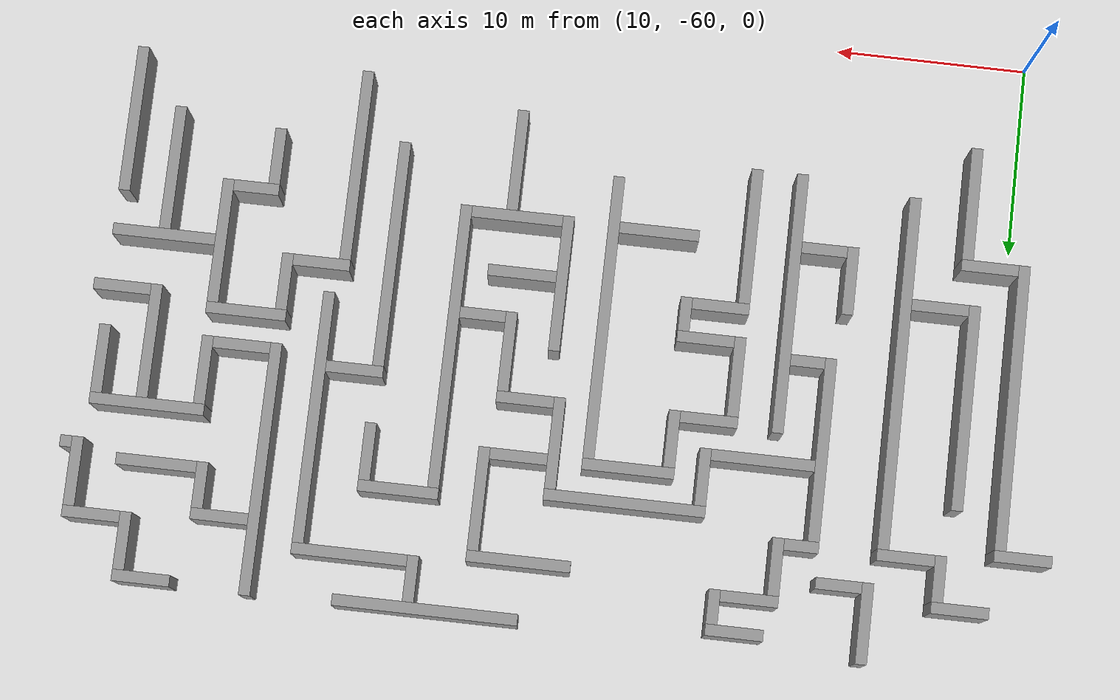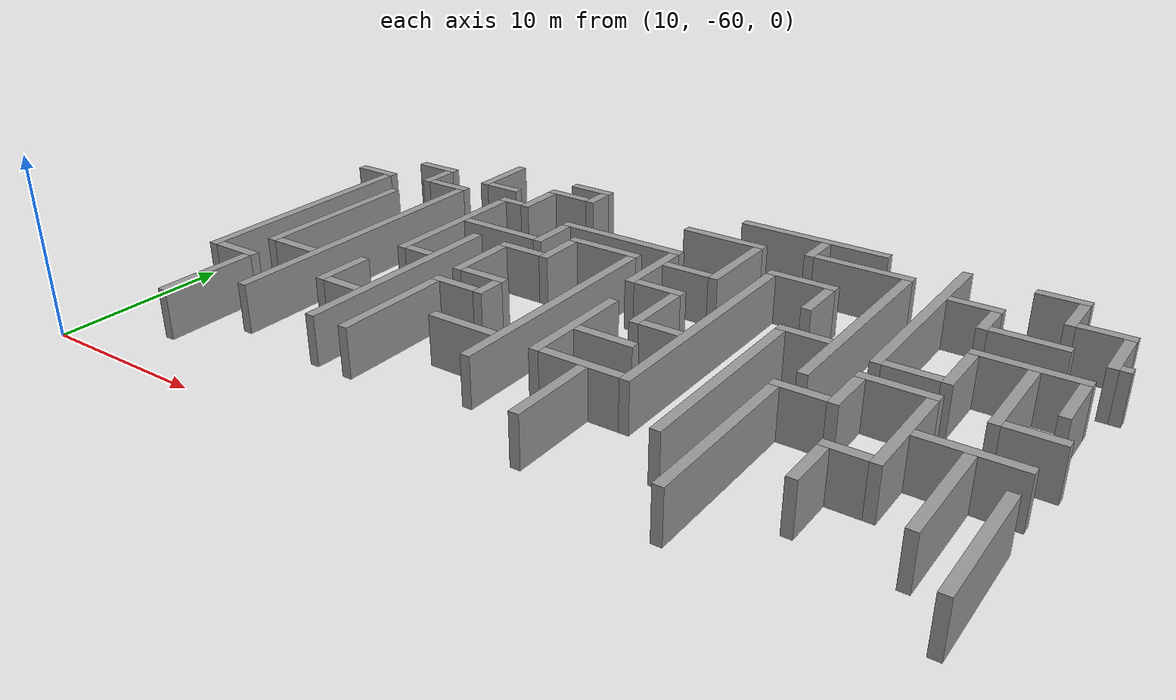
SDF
<sdf version="1.4">
 <model name="ButterflyWorld">
  <static>1</static>
  <link name="Wall_80">
   <collision name="Wall_80_Collision">
    <geometry><box><size>0.60000 4.20000 3.00000</size></box></geometry>
    <pose>15.90000 -29.70000 0 0 0 0.00000</pose>
   </collision>
   <visual name="Wall_80_Visual">
    <geometry><box><size>0.60000 4.20000 3.00000</size></box></geometry>
    <material>
     <script><uri>file://media/materials/scripts/gazebo.material</uri><name>Gazebo/Grey</name></script>
    </material>
    <pose>15.90000 -29.70000 0 0 0 0.00000</pose>
   </visual>
  </link>
  <link name="Wall_81">
   <collision name="Wall_81_Collision">
    <geometry><box><size>9.60000 0.60000 3.00000</size></box></geometry>
    <pose>38.40000 -27.90000 0 0 0 0.00000</pose>
   </collision>
   <visual name="Wall_81_Visual">
    <geometry><box><size>9.60000 0.60000 3.00000</size></box></geometry>
    <material>
     <script><uri>file://media/materials/scripts/gazebo.material</uri><name>Gazebo/Grey</name></script>
    </material>
    <pose>38.40000 -27.90000 0 0 0 0.00000</pose>
   </visual>
  </link>
  <link name="Wall_82">
   <collision name="Wall_82_Collision">
    <geometry><box><size>0.60000 13.20000 3.00000</size></box></geometry>
    <pose>47.70000 -34.20000 0 0 0 0.00000</pose>
   </collision>
   <visual name="Wall_82_Visual">
    <geometry><box><size>0.60000 13.20000 3.00000</size></box></geometry>
    <material>
     <script><uri>file://media/materials/scripts/gazebo.material</uri><name>Gazebo/Grey</name></script>
    </material>
    <pose>47.70000 -34.20000 0 0 0 0.00000</pose>
   </visual>
  </link>
  <link name="Wall_83">
   <collision name="Wall_83_Collision">
    <geometry><box><size>3.00000 0.60000 3.00000</size></box></geometry>
    <pose>53.10000 -27.90000 0 0 0 0.00000</pose>
   </collision>
   <visual name="Wall_83_Visual">
    <geometry><box><size>3.00000 0.60000 3.00000</size></box></geometry>
    <material>
     <script><uri>file://media/materials/scripts/gazebo.material</uri><name>Gazebo/Grey</name></script>
    </material>
    <pose>53.10000 -27.90000 0 0 0 0.00000</pose>
   </visual>
  </link>
  <link name="Wall_84">
   <collision name="Wall_84_Collision">
    <geometry><box><size>3.00000 0.60000 3.00000</size></box></geometry>
    <pose>22.50000 -28.50000 0 0 0 0.00000</pose>
   </collision>
   <visual name="Wall_84_Visual">
    <geometry><box><size>3.00000 0.60000 3.00000</size></box></geometry>
    <material>
     <script><uri>file://media/materials/scripts/gazebo.material</uri><name>Gazebo/Grey</name></script>
    </material>
    <pose>22.50000 -28.50000 0 0 0 0.00000</pose>
   </visual>
  </link>
  <link name="Wall_85">
   <collision name="Wall_85_Collision">
    <geometry><box><size>0.60000 2.40000 3.00000</size></box></geometry>
    <pose>39.30000 -29.40000 0 0 0 0.00000</pose>
   </collision>
   <visual name="Wall_85_Visual">
    <geometry><box><size>0.60000 2.40000 3.00000</size></box></geometry>
    <material>
     <script><uri>file://media/materials/scripts/gazebo.material</uri><name>Gazebo/Grey</name></script>
    </material>
    <pose>39.30000 -29.40000 0 0 0 0.00000</pose>
   </visual>
  </link>
  <link name="Wall_86">
   <collision name="Wall_86_Collision">
    <geometry><box><size>0.60000 3.00000 3.00000</size></box></geometry>
    <pose>54.30000 -29.70000 0 0 0 0.00000</pose>
   </collision>
   <visual name="Wall_86_Visual">
    <geometry><box><size>0.60000 3.00000 3.00000</size></box></geometry>
    <material>
     <script><uri>file://media/materials/scripts/gazebo.material</uri><name>Gazebo/Grey</name></script>
    </material>
    <pose>54.30000 -29.70000 0 0 0 0.00000</pose>
   </visual>
  </link>
  <link name="Wall_87">
   <collision name="Wall_87_Collision">
    <geometry><box><size>0.60000 1.80000 3.00000</size></box></geometry>
    <pose>23.70000 -29.70000 0 0 0 0.00000</pose>
   </collision>
   <visual name="Wall_87_Visual">
    <geometry><box><size>0.60000 1.80000 3.00000</size></box></geometry>
    <material>
     <script><uri>file://media/materials/scripts/gazebo.material</uri><name>Gazebo/Grey</name></script>
    </material>
    <pose>23.70000 -29.70000 0 0 0 0.00000</pose>
   </visual>
  </link>
  <link name="Wall_88">
   <collision name="Wall_88_Collision">
    <geometry><box><size>3.00000 0.60000 3.00000</size></box></geometry>
    <pose>21.90000 -30.30000 0 0 0 0.00000</pose>
   </collision>
   <visual name="Wall_88_Visual">
    <geometry><box><size>3.00000 0.60000 3.00000</size></box></geometry>
    <material>
     <script><uri>file://media/materials/scripts/gazebo.material</uri><name>Gazebo/Grey</name></script>
    </material>
    <pose>21.90000 -30.30000 0 0 0 0.00000</pose>
   </visual>
  </link>
  <link name="Wall_89">
   <collision name="Wall_89_Collision">
    <geometry><box><size>6.00000 0.60000 3.00000</size></box></geometry>
    <pose>42.60000 -30.30000 0 0 0 0.00000</pose>
   </collision>
   <visual name="Wall_89_Visual">
    <geometry><box><size>6.00000 0.60000 3.00000</size></box></geometry>
    <material>
     <script><uri>file://media/materials/scripts/gazebo.material</uri><name>Gazebo/Grey</name></script>
    </material>
    <pose>42.60000 -30.30000 0 0 0 0.00000</pose>
   </visual>
  </link>
  <link name="Wall_90">
   <collision name="Wall_90_Collision">
    <geometry><box><size>3.00000 0.60000 3.00000</size></box></geometry>
    <pose>11.10000 -30.90000 0 0 0 0.00000</pose>
   </collision>
   <visual name="Wall_90_Visual">
    <geometry><box><size>3.00000 0.60000 3.00000</size></box></geometry>
    <material>
     <script><uri>file://media/materials/scripts/gazebo.material</uri><name>Gazebo/Grey</name></script>
    </material>
    <pose>11.10000 -30.90000 0 0 0 0.00000</pose>
   </visual>
  </link>
  <link name="Wall_91">
   <collision name="Wall_91_Collision">
    <geometry><box><size>0.60000 3.00000 3.00000</size></box></geometry>
    <pose>20.70000 -32.10000 0 0 0 0.00000</pose>
   </collision>
   <visual name="Wall_91_Visual">
    <geometry><box><size>0.60000 3.00000 3.00000</size></box></geometry>
    <material>
     <script><uri>file://media/materials/scripts/gazebo.material</uri><name>Gazebo/Grey</name></script>
    </material>
    <pose>20.70000 -32.10000 0 0 0 0.00000</pose>
   </visual>
  </link>
  <link name="Wall_92">
   <collision name="Wall_92_Collision">
    <geometry><box><size>5.40000 0.60000 3.00000</size></box></geometry>
    <pose>33.90000 -30.90000 0 0 0 0.00000</pose>
   </collision>
   <visual name="Wall_92_Visual">
    <geometry><box><size>5.40000 0.60000 3.00000</size></box></geometry>
    <material>
     <script><uri>file://media/materials/scripts/gazebo.material</uri><name>Gazebo/Grey</name></script>
    </material>
    <pose>33.90000 -30.90000 0 0 0 0.00000</pose>
   </visual>
  </link>
  <link name="Wall_93">
   <collision name="Wall_93_Collision">
    <geometry><box><size>0.60000 13.20000 3.00000</size></box></geometry>
    <pose>45.30000 -37.20000 0 0 0 0.00000</pose>
   </collision>
   <visual name="Wall_93_Visual">
    <geometry><box><size>0.60000 13.20000 3.00000</size></box></geometry>
    <material>
     <script><uri>file://media/materials/scripts/gazebo.material</uri><name>Gazebo/Grey</name></script>
    </material>
    <pose>45.30000 -37.20000 0 0 0 0.00000</pose>
   </visual>
  </link>
  <link name="Wall_94">
   <collision name="Wall_94_Collision">
    <geometry><box><size>3.00000 0.60000 3.00000</size></box></geometry>
    <pose>56.10000 -30.90000 0 0 0 0.00000</pose>
   </collision>
   <visual name="Wall_94_Visual">
    <geometry><box><size>3.00000 0.60000 3.00000</size></box></geometry>
    <material>
     <script><uri>file://media/materials/scripts/gazebo.material</uri><name>Gazebo/Grey</name></script>
    </material>
    <pose>56.10000 -30.90000 0 0 0 0.00000</pose>
   </visual>
  </link>
  <link name="Wall_95">
   <collision name="Wall_95_Collision">
    <geometry><box><size>0.60000 2.40000 3.00000</size></box></geometry>
    <pose>12.30000 -32.40000 0 0 0 0.00000</pose>
   </collision>
   <visual name="Wall_95_Visual">
    <geometry><box><size>0.60000 2.40000 3.00000</size></box></geometry>
    <material>
     <script><uri>file://media/materials/scripts/gazebo.material</uri><name>Gazebo/Grey</name></script>
    </material>
    <pose>12.30000 -32.40000 0 0 0 0.00000</pose>
   </visual>
  </link>
  <link name="Wall_96">
   <collision name="Wall_96_Collision">
    <geometry><box><size>2.40000 0.60000 3.00000</size></box></geometry>
    <pose>17.40000 -31.50000 0 0 0 0.00000</pose>
   </collision>
   <visual name="Wall_96_Visual">
    <geometry><box><size>2.40000 0.60000 3.00000</size></box></geometry>
    <material>
     <script><uri>file://media/materials/scripts/gazebo.material</uri><name>Gazebo/Grey</name></script>
    </material>
    <pose>17.40000 -31.50000 0 0 0 0.00000</pose>
   </visual>
  </link>
  <link name="Wall_97">
   <collision name="Wall_97_Collision">
    <geometry><box><size>0.60000 5.40000 3.00000</size></box></geometry>
    <pose>36.30000 -33.90000 0 0 0 0.00000</pose>
   </collision>
   <visual name="Wall_97_Visual">
    <geometry><box><size>0.60000 5.40000 3.00000</size></box></geometry>
    <material>
     <script><uri>file://media/materials/scripts/gazebo.material</uri><name>Gazebo/Grey</name></script>
    </material>
    <pose>36.30000 -33.90000 0 0 0 0.00000</pose>
   </visual>
  </link>
  <link name="Wall_98">
   <collision name="Wall_98_Collision">
    <geometry><box><size>3.00000 0.60000 3.00000</size></box></geometry>
    <pose>49.50000 -31.50000 0 0 0 0.00000</pose>
   </collision>
   <visual name="Wall_98_Visual">
    <geometry><box><size>3.00000 0.60000 3.00000</size></box></geometry>
    <material>
     <script><uri>file://media/materials/scripts/gazebo.material</uri><name>Gazebo/Grey</name></script>
    </material>
    <pose>49.50000 -31.50000 0 0 0 0.00000</pose>
   </visual>
  </link>
  <link name="Wall_99">
   <collision name="Wall_99_Collision">
    <geometry><box><size>0.60000 3.60000 3.00000</size></box></geometry>
    <pose>57.30000 -33.00000 0 0 0 0.00000</pose>
   </collision>
   <visual name="Wall_99_Visual">
    <geometry><box><size>0.60000 3.60000 3.00000</size></box></geometry>
    <material>
     <script><uri>file://media/materials/scripts/gazebo.material</uri><name>Gazebo/Grey</name></script>
    </material>
    <pose>57.30000 -33.00000 0 0 0 0.00000</pose>
   </visual>
  </link>
  <link name="Wall_100">
   <collision name="Wall_100_Collision">
    <geometry><box><size>0.60000 2.40000 3.00000</size></box></geometry>
    <pose>50.70000 -33.00000 0 0 0 0.00000</pose>
   </collision>
   <visual name="Wall_100_Visual">
    <geometry><box><size>0.60000 2.40000 3.00000</size></box></geometry>
    <material>
     <script><uri>file://media/materials/scripts/gazebo.material</uri><name>Gazebo/Grey</name></script>
    </material>
    <pose>50.70000 -33.00000 0 0 0 0.00000</pose>
   </visual>
  </link>
  <link name="Wall_101">
   <collision name="Wall_101_Collision">
    <geometry><box><size>3.00000 0.60000 3.00000</size></box></geometry>
    <pose>14.10000 -33.30000 0 0 0 0.00000</pose>
   </collision>
   <visual name="Wall_101_Visual">
    <geometry><box><size>3.00000 0.60000 3.00000</size></box></geometry>
    <material>
     <script><uri>file://media/materials/scripts/gazebo.material</uri><name>Gazebo/Grey</name></script>
    </material>
    <pose>14.10000 -33.30000 0 0 0 0.00000</pose>
   </visual>
  </link>
  <link name="Wall_102">
   <collision name="Wall_102_Collision">
    <geometry><box><size>1.80000 0.60000 3.00000</size></box></geometry>
    <pose>19.50000 -33.30000 0 0 0 0.00000</pose>
   </collision>
   <visual name="Wall_102_Visual">
    <geometry><box><size>1.80000 0.60000 3.00000</size></box></geometry>
    <material>
     <script><uri>file://media/materials/scripts/gazebo.material</uri><name>Gazebo/Grey</name></script>
    </material>
    <pose>19.50000 -33.30000 0 0 0 0.00000</pose>
   </visual>
  </link>
  <link name="Wall_103">
   <collision name="Wall_103_Collision">
    <geometry><box><size>3.00000 0.60000 3.00000</size></box></geometry>
    <pose>8.10000 -33.90000 0 0 0 0.00000</pose>
   </collision>
   <visual name="Wall_103_Visual">
    <geometry><box><size>3.00000 0.60000 3.00000</size></box></geometry>
    <material>
     <script><uri>file://media/materials/scripts/gazebo.material</uri><name>Gazebo/Grey</name></script>
    </material>
    <pose>8.10000 -33.90000 0 0 0 0.00000</pose>
   </visual>
  </link>
  <link name="Wall_104">
   <collision name="Wall_104_Collision">
    <geometry><box><size>0.60000 18.60000 3.00000</size></box></geometry>
    <pose>15.30000 -42.90000 0 0 0 0.00000</pose>
   </collision>
   <visual name="Wall_104_Visual">
    <geometry><box><size>0.60000 18.60000 3.00000</size></box></geometry>
    <material>
     <script><uri>file://media/materials/scripts/gazebo.material</uri><name>Gazebo/Grey</name></script>
    </material>
    <pose>15.30000 -42.90000 0 0 0 0.00000</pose>
   </visual>
  </link>
  <link name="Wall_105">
   <collision name="Wall_105_Collision">
    <geometry><box><size>0.60000 9.60000 3.00000</size></box></geometry>
    <pose>18.90000 -38.40000 0 0 0 0.00000</pose>
   </collision>
   <visual name="Wall_105_Visual">
    <geometry><box><size>0.60000 9.60000 3.00000</size></box></geometry>
    <material>
     <script><uri>file://media/materials/scripts/gazebo.material</uri><name>Gazebo/Grey</name></script>
    </material>
    <pose>18.90000 -38.40000 0 0 0 0.00000</pose>
   </visual>
  </link>
  <link name="Wall_106">
   <collision name="Wall_106_Collision">
    <geometry><box><size>4.20000 0.60000 3.00000</size></box></geometry>
    <pose>40.50000 -33.90000 0 0 0 0.00000</pose>
   </collision>
   <visual name="Wall_106_Visual">
    <geometry><box><size>4.20000 0.60000 3.00000</size></box></geometry>
    <material>
     <script><uri>file://media/materials/scripts/gazebo.material</uri><name>Gazebo/Grey</name></script>
    </material>
    <pose>40.50000 -33.90000 0 0 0 0.00000</pose>
   </visual>
  </link>
  <link name="Wall_107">
   <collision name="Wall_107_Collision">
    <geometry><box><size>4.20000 0.60000 3.00000</size></box></geometry>
    <pose>53.10000 -33.90000 0 0 0 0.00000</pose>
   </collision>
   <visual name="Wall_107_Visual">
    <geometry><box><size>4.20000 0.60000 3.00000</size></box></geometry>
    <material>
     <script><uri>file://media/materials/scripts/gazebo.material</uri><name>Gazebo/Grey</name></script>
    </material>
    <pose>53.10000 -33.90000 0 0 0 0.00000</pose>
   </visual>
  </link>
  <link name="Wall_108">
   <collision name="Wall_108_Collision">
    <geometry><box><size>0.60000 15.00000 3.00000</size></box></geometry>
    <pose>9.30000 -41.70000 0 0 0 0.00000</pose>
   </collision>
   <visual name="Wall_108_Visual">
    <geometry><box><size>0.60000 15.00000 3.00000</size></box></geometry>
    <material>
     <script><uri>file://media/materials/scripts/gazebo.material</uri><name>Gazebo/Grey</name></script>
    </material>
    <pose>9.30000 -41.70000 0 0 0 0.00000</pose>
   </visual>
  </link>
  <link name="Wall_109">
   <collision name="Wall_109_Collision">
    <geometry><box><size>8.40000 0.60000 3.00000</size></box></geometry>
    <pose>28.80000 -34.50000 0 0 0 0.00000</pose>
   </collision>
   <visual name="Wall_109_Visual">
    <geometry><box><size>8.40000 0.60000 3.00000</size></box></geometry>
    <material>
     <script><uri>file://media/materials/scripts/gazebo.material</uri><name>Gazebo/Grey</name></script>
    </material>
    <pose>28.80000 -34.50000 0 0 0 0.00000</pose>
   </visual>
  </link>
  <link name="Wall_110">
   <collision name="Wall_110_Collision">
    <geometry><box><size>0.60000 15.00000 3.00000</size></box></geometry>
    <pose>38.70000 -41.70000 0 0 0 0.00000</pose>
   </collision>
   <visual name="Wall_110_Visual">
    <geometry><box><size>0.60000 15.00000 3.00000</size></box></geometry>
    <material>
     <script><uri>file://media/materials/scripts/gazebo.material</uri><name>Gazebo/Grey</name></script>
    </material>
    <pose>38.70000 -41.70000 0 0 0 0.00000</pose>
   </visual>
  </link>
  <link name="Wall_111">
   <collision name="Wall_111_Collision">
    <geometry><box><size>0.60000 3.00000 3.00000</size></box></geometry>
    <pose>42.30000 -35.70000 0 0 0 0.00000</pose>
   </collision>
   <visual name="Wall_111_Visual">
    <geometry><box><size>0.60000 3.00000 3.00000</size></box></geometry>
    <material>
     <script><uri>file://media/materials/scripts/gazebo.material</uri><name>Gazebo/Grey</name></script>
    </material>
    <pose>42.30000 -35.70000 0 0 0 0.00000</pose>
   </visual>
  </link>
  <link name="Wall_112">
   <collision name="Wall_112_Collision">
    <geometry><box><size>0.60000 0.60000 3.00000</size></box></geometry>
    <pose>57.90000 -34.50000 0 0 0 0.00000</pose>
   </collision>
   <visual name="Wall_112_Visual">
    <geometry><box><size>0.60000 0.60000 3.00000</size></box></geometry>
    <material>
     <script><uri>file://media/materials/scripts/gazebo.material</uri><name>Gazebo/Grey</name></script>
    </material>
    <pose>57.90000 -34.50000 0 0 0 0.00000</pose>
   </visual>
  </link>
  <link name="Wall_113">
   <collision name="Wall_113_Collision">
    <geometry><box><size>0.60000 3.00000 3.00000</size></box></geometry>
    <pose>24.90000 -36.30000 0 0 0 0.00000</pose>
   </collision>
   <visual name="Wall_113_Visual">
    <geometry><box><size>0.60000 3.00000 3.00000</size></box></geometry>
    <material>
     <script><uri>file://media/materials/scripts/gazebo.material</uri><name>Gazebo/Grey</name></script>
    </material>
    <pose>24.90000 -36.30000 0 0 0 0.00000</pose>
   </visual>
  </link>
  <link name="Wall_114">
   <collision name="Wall_114_Collision">
    <geometry><box><size>0.60000 4.80000 3.00000</size></box></geometry>
    <pose>32.70000 -37.20000 0 0 0 0.00000</pose>
   </collision>
   <visual name="Wall_114_Visual">
    <geometry><box><size>0.60000 4.80000 3.00000</size></box></geometry>
    <material>
     <script><uri>file://media/materials/scripts/gazebo.material</uri><name>Gazebo/Grey</name></script>
    </material>
    <pose>32.70000 -37.20000 0 0 0 0.00000</pose>
   </visual>
  </link>
  <link name="Wall_115">
   <collision name="Wall_115_Collision">
    <geometry><box><size>0.60000 10.80000 3.00000</size></box></geometry>
    <pose>11.70000 -41.40000 0 0 0 0.00000</pose>
   </collision>
   <visual name="Wall_115_Visual">
    <geometry><box><size>0.60000 10.80000 3.00000</size></box></geometry>
    <material>
     <script><uri>file://media/materials/scripts/gazebo.material</uri><name>Gazebo/Grey</name></script>
    </material>
    <pose>11.70000 -41.40000 0 0 0 0.00000</pose>
   </visual>
  </link>
  <link name="Wall_116">
   <collision name="Wall_116_Collision">
    <geometry><box><size>4.80000 0.60000 3.00000</size></box></geometry>
    <pose>28.80000 -36.30000 0 0 0 0.00000</pose>
   </collision>
   <visual name="Wall_116_Visual">
    <geometry><box><size>4.80000 0.60000 3.00000</size></box></geometry>
    <material>
     <script><uri>file://media/materials/scripts/gazebo.material</uri><name>Gazebo/Grey</name></script>
    </material>
    <pose>28.80000 -36.30000 0 0 0 0.00000</pose>
   </visual>
  </link>
  <link name="Wall_117">
   <collision name="Wall_117_Collision">
    <geometry><box><size>3.00000 0.60000 3.00000</size></box></geometry>
    <pose>34.50000 -36.30000 0 0 0 0.00000</pose>
   </collision>
   <visual name="Wall_117_Visual">
    <geometry><box><size>3.00000 0.60000 3.00000</size></box></geometry>
    <material>
     <script><uri>file://media/materials/scripts/gazebo.material</uri><name>Gazebo/Grey</name></script>
    </material>
    <pose>34.50000 -36.30000 0 0 0 0.00000</pose>
   </visual>
  </link>
  <link name="Wall_118">
   <collision name="Wall_118_Collision">
    <geometry><box><size>0.60000 3.00000 3.00000</size></box></geometry>
    <pose>26.70000 -38.10000 0 0 0 0.00000</pose>
   </collision>
   <visual name="Wall_118_Visual">
    <geometry><box><size>0.60000 3.00000 3.00000</size></box></geometry>
    <material>
     <script><uri>file://media/materials/scripts/gazebo.material</uri><name>Gazebo/Grey</name></script>
    </material>
    <pose>26.70000 -38.10000 0 0 0 0.00000</pose>
   </visual>
  </link>
  <link name="Wall_119">
   <collision name="Wall_119_Collision">
    <geometry><box><size>0.60000 15.00000 3.00000</size></box></geometry>
    <pose>30.90000 -44.10000 0 0 0 0.00000</pose>
   </collision>
   <visual name="Wall_119_Visual">
    <geometry><box><size>0.60000 15.00000 3.00000</size></box></geometry>
    <material>
     <script><uri>file://media/materials/scripts/gazebo.material</uri><name>Gazebo/Grey</name></script>
    </material>
    <pose>30.90000 -44.10000 0 0 0 0.00000</pose>
   </visual>
  </link>
  <link name="Wall_120">
   <collision name="Wall_120_Collision">
    <geometry><box><size>6.00000 0.60000 3.00000</size></box></geometry>
    <pose>54.00000 -36.90000 0 0 0 0.00000</pose>
   </collision>
   <visual name="Wall_120_Visual">
    <geometry><box><size>6.00000 0.60000 3.00000</size></box></geometry>
    <material>
     <script><uri>file://media/materials/scripts/gazebo.material</uri><name>Gazebo/Grey</name></script>
    </material>
    <pose>54.00000 -36.90000 0 0 0 0.00000</pose>
   </visual>
  </link>
  <link name="Wall_121">
   <collision name="Wall_121_Collision">
    <geometry><box><size>5.40000 0.60000 3.00000</size></box></geometry>
    <pose>21.90000 -37.50000 0 0 0 0.00000</pose>
   </collision>
   <visual name="Wall_121_Visual">
    <geometry><box><size>5.40000 0.60000 3.00000</size></box></geometry>
    <material>
     <script><uri>file://media/materials/scripts/gazebo.material</uri><name>Gazebo/Grey</name></script>
    </material>
    <pose>21.90000 -37.50000 0 0 0 0.00000</pose>
   </visual>
  </link>
  <link name="Wall_122">
   <collision name="Wall_122_Collision">
    <geometry><box><size>0.60000 3.60000 3.00000</size></box></geometry>
    <pose>51.30000 -39.00000 0 0 0 0.00000</pose>
   </collision>
   <visual name="Wall_122_Visual">
    <geometry><box><size>0.60000 3.60000 3.00000</size></box></geometry>
    <material>
     <script><uri>file://media/materials/scripts/gazebo.material</uri><name>Gazebo/Grey</name></script>
    </material>
    <pose>51.30000 -39.00000 0 0 0 0.00000</pose>
   </visual>
  </link>
  <link name="Wall_123">
   <collision name="Wall_123_Collision">
    <geometry><box><size>0.60000 6.00000 3.00000</size></box></geometry>
    <pose>54.30000 -40.20000 0 0 0 0.00000</pose>
   </collision>
   <visual name="Wall_123_Visual">
    <geometry><box><size>0.60000 6.00000 3.00000</size></box></geometry>
    <material>
     <script><uri>file://media/materials/scripts/gazebo.material</uri><name>Gazebo/Grey</name></script>
    </material>
    <pose>54.30000 -40.20000 0 0 0 0.00000</pose>
   </visual>
  </link>
  <link name="Wall_124">
   <collision name="Wall_124_Collision">
    <geometry><box><size>0.60000 3.60000 3.00000</size></box></geometry>
    <pose>56.70000 -39.00000 0 0 0 0.00000</pose>
   </collision>
   <visual name="Wall_124_Visual">
    <geometry><box><size>0.60000 3.60000 3.00000</size></box></geometry>
    <material>
     <script><uri>file://media/materials/scripts/gazebo.material</uri><name>Gazebo/Grey</name></script>
    </material>
    <pose>56.70000 -39.00000 0 0 0 0.00000</pose>
   </visual>
  </link>
  <link name="Wall_125">
   <collision name="Wall_125_Collision">
    <geometry><box><size>0.60000 13.80000 3.00000</size></box></geometry>
    <pose>21.30000 -45.90000 0 0 0 0.00000</pose>
   </collision>
   <visual name="Wall_125_Visual">
    <geometry><box><size>0.60000 13.80000 3.00000</size></box></geometry>
    <material>
     <script><uri>file://media/materials/scripts/gazebo.material</uri><name>Gazebo/Grey</name></script>
    </material>
    <pose>21.30000 -45.90000 0 0 0 0.00000</pose>
   </visual>
  </link>
  <link name="Wall_126">
   <collision name="Wall_126_Collision">
    <geometry><box><size>3.00000 0.60000 3.00000</size></box></geometry>
    <pose>24.90000 -39.30000 0 0 0 0.00000</pose>
   </collision>
   <visual name="Wall_126_Visual">
    <geometry><box><size>3.00000 0.60000 3.00000</size></box></geometry>
    <material>
     <script><uri>file://media/materials/scripts/gazebo.material</uri><name>Gazebo/Grey</name></script>
    </material>
    <pose>24.90000 -39.30000 0 0 0 0.00000</pose>
   </visual>
  </link>
  <link name="Wall_127">
   <collision name="Wall_127_Collision">
    <geometry><box><size>3.00000 0.60000 3.00000</size></box></geometry>
    <pose>34.50000 -39.30000 0 0 0 0.00000</pose>
   </collision>
   <visual name="Wall_127_Visual">
    <geometry><box><size>3.00000 0.60000 3.00000</size></box></geometry>
    <material>
     <script><uri>file://media/materials/scripts/gazebo.material</uri><name>Gazebo/Grey</name></script>
    </material>
    <pose>34.50000 -39.30000 0 0 0 0.00000</pose>
   </visual>
  </link>
  <link name="Wall_128">
   <collision name="Wall_128_Collision">
    <geometry><box><size>0.60000 4.20000 3.00000</size></box></geometry>
    <pose>23.70000 -41.70000 0 0 0 0.00000</pose>
   </collision>
   <visual name="Wall_128_Visual">
    <geometry><box><size>0.60000 4.20000 3.00000</size></box></geometry>
    <material>
     <script><uri>file://media/materials/scripts/gazebo.material</uri><name>Gazebo/Grey</name></script>
    </material>
    <pose>23.70000 -41.70000 0 0 0 0.00000</pose>
   </visual>
  </link>
  <link name="Wall_129">
   <collision name="Wall_129_Collision">
    <geometry><box><size>0.60000 4.20000 3.00000</size></box></geometry>
    <pose>35.70000 -41.70000 0 0 0 0.00000</pose>
   </collision>
   <visual name="Wall_129_Visual">
    <geometry><box><size>0.60000 4.20000 3.00000</size></box></geometry>
    <material>
     <script><uri>file://media/materials/scripts/gazebo.material</uri><name>Gazebo/Grey</name></script>
    </material>
    <pose>35.70000 -41.70000 0 0 0 0.00000</pose>
   </visual>
  </link>
  <link name="Wall_130">
   <collision name="Wall_130_Collision">
    <geometry><box><size>3.00000 0.60000 3.00000</size></box></geometry>
    <pose>43.50000 -39.90000 0 0 0 0.00000</pose>
   </collision>
   <visual name="Wall_130_Visual">
    <geometry><box><size>3.00000 0.60000 3.00000</size></box></geometry>
    <material>
     <script><uri>file://media/materials/scripts/gazebo.material</uri><name>Gazebo/Grey</name></script>
    </material>
    <pose>43.50000 -39.90000 0 0 0 0.00000</pose>
   </visual>
  </link>
  <link name="Wall_131">
   <collision name="Wall_131_Collision">
    <geometry><box><size>0.60000 12.00000 3.00000</size></box></geometry>
    <pose>42.30000 -46.20000 0 0 0 0.00000</pose>
   </collision>
   <visual name="Wall_131_Visual">
    <geometry><box><size>0.60000 12.00000 3.00000</size></box></geometry>
    <material>
     <script><uri>file://media/materials/scripts/gazebo.material</uri><name>Gazebo/Grey</name></script>
    </material>
    <pose>42.30000 -46.20000 0 0 0 0.00000</pose>
   </visual>
  </link>
  <link name="Wall_132">
   <collision name="Wall_132_Collision">
    <geometry><box><size>3.00000 0.60000 3.00000</size></box></geometry>
    <pose>49.50000 -40.50000 0 0 0 0.00000</pose>
   </collision>
   <visual name="Wall_132_Visual">
    <geometry><box><size>3.00000 0.60000 3.00000</size></box></geometry>
    <material>
     <script><uri>file://media/materials/scripts/gazebo.material</uri><name>Gazebo/Grey</name></script>
    </material>
    <pose>49.50000 -40.50000 0 0 0 0.00000</pose>
   </visual>
  </link>
  <link name="Wall_133">
   <collision name="Wall_133_Collision">
    <geometry><box><size>0.60000 7.20000 3.00000</size></box></geometry>
    <pose>33.30000 -45.60000 0 0 0 0.00000</pose>
   </collision>
   <visual name="Wall_133_Visual">
    <geometry><box><size>0.60000 7.20000 3.00000</size></box></geometry>
    <material>
     <script><uri>file://media/materials/scripts/gazebo.material</uri><name>Gazebo/Grey</name></script>
    </material>
    <pose>33.30000 -45.60000 0 0 0 0.00000</pose>
   </visual>
  </link>
  <link name="Wall_134">
   <collision name="Wall_134_Collision">
    <geometry><box><size>4.20000 0.60000 3.00000</size></box></geometry>
    <pose>49.50000 -42.30000 0 0 0 0.00000</pose>
   </collision>
   <visual name="Wall_134_Visual">
    <geometry><box><size>4.20000 0.60000 3.00000</size></box></geometry>
    <material>
     <script><uri>file://media/materials/scripts/gazebo.material</uri><name>Gazebo/Grey</name></script>
    </material>
    <pose>49.50000 -42.30000 0 0 0 0.00000</pose>
   </visual>
  </link>
  <link name="Wall_135">
   <collision name="Wall_135_Collision">
    <geometry><box><size>1.80000 0.60000 3.00000</size></box></geometry>
    <pose>20.10000 -42.90000 0 0 0 0.00000</pose>
   </collision>
   <visual name="Wall_135_Visual">
    <geometry><box><size>1.80000 0.60000 3.00000</size></box></geometry>
    <material>
     <script><uri>file://media/materials/scripts/gazebo.material</uri><name>Gazebo/Grey</name></script>
    </material>
    <pose>20.10000 -42.90000 0 0 0 0.00000</pose>
   </visual>
  </link>
  <link name="Wall_136">
   <collision name="Wall_136_Collision">
    <geometry><box><size>0.60000 3.00000 3.00000</size></box></geometry>
    <pose>47.70000 -44.10000 0 0 0 0.00000</pose>
   </collision>
   <visual name="Wall_136_Visual">
    <geometry><box><size>0.60000 3.00000 3.00000</size></box></geometry>
    <material>
     <script><uri>file://media/materials/scripts/gazebo.material</uri><name>Gazebo/Grey</name></script>
    </material>
    <pose>47.70000 -44.10000 0 0 0 0.00000</pose>
   </visual>
  </link>
  <link name="Wall_137">
   <collision name="Wall_137_Collision">
    <geometry><box><size>0.60000 6.60000 3.00000</size></box></geometry>
    <pose>51.30000 -45.90000 0 0 0 0.00000</pose>
   </collision>
   <visual name="Wall_137_Visual">
    <geometry><box><size>0.60000 6.60000 3.00000</size></box></geometry>
    <material>
     <script><uri>file://media/materials/scripts/gazebo.material</uri><name>Gazebo/Grey</name></script>
    </material>
    <pose>51.30000 -45.90000 0 0 0 0.00000</pose>
   </visual>
  </link>
  <link name="Wall_138">
   <collision name="Wall_138_Collision">
    <geometry><box><size>3.00000 0.60000 3.00000</size></box></geometry>
    <pose>56.10000 -42.90000 0 0 0 0.00000</pose>
   </collision>
   <visual name="Wall_138_Visual">
    <geometry><box><size>3.00000 0.60000 3.00000</size></box></geometry>
    <material>
     <script><uri>file://media/materials/scripts/gazebo.material</uri><name>Gazebo/Grey</name></script>
    </material>
    <pose>56.10000 -42.90000 0 0 0 0.00000</pose>
   </visual>
  </link>
  <link name="Wall_139">
   <collision name="Wall_139_Collision">
    <geometry><box><size>3.00000 0.60000 3.00000</size></box></geometry>
    <pose>25.50000 -43.50000 0 0 0 0.00000</pose>
   </collision>
   <visual name="Wall_139_Visual">
    <geometry><box><size>3.00000 0.60000 3.00000</size></box></geometry>
    <material>
     <script><uri>file://media/materials/scripts/gazebo.material</uri><name>Gazebo/Grey</name></script>
    </material>
    <pose>25.50000 -43.50000 0 0 0 0.00000</pose>
   </visual>
  </link>
  <link name="Wall_140">
   <collision name="Wall_140_Collision">
    <geometry><box><size>2.40000 0.60000 3.00000</size></box></geometry>
    <pose>37.20000 -43.50000 0 0 0 0.00000</pose>
   </collision>
   <visual name="Wall_140_Visual">
    <geometry><box><size>2.40000 0.60000 3.00000</size></box></geometry>
    <material>
     <script><uri>file://media/materials/scripts/gazebo.material</uri><name>Gazebo/Grey</name></script>
    </material>
    <pose>37.20000 -43.50000 0 0 0 0.00000</pose>
   </visual>
  </link>
  <link name="Wall_141">
   <collision name="Wall_141_Collision">
    <geometry><box><size>0.60000 1.80000 3.00000</size></box></geometry>
    <pose>26.70000 -44.70000 0 0 0 0.00000</pose>
   </collision>
   <visual name="Wall_141_Visual">
    <geometry><box><size>0.60000 1.80000 3.00000</size></box></geometry>
    <material>
     <script><uri>file://media/materials/scripts/gazebo.material</uri><name>Gazebo/Grey</name></script>
    </material>
    <pose>26.70000 -44.70000 0 0 0 0.00000</pose>
   </visual>
  </link>
  <link name="Wall_142">
   <collision name="Wall_142_Collision">
    <geometry><box><size>3.00000 0.60000 3.00000</size></box></geometry>
    <pose>24.90000 -45.30000 0 0 0 0.00000</pose>
   </collision>
   <visual name="Wall_142_Visual">
    <geometry><box><size>3.00000 0.60000 3.00000</size></box></geometry>
    <material>
     <script><uri>file://media/materials/scripts/gazebo.material</uri><name>Gazebo/Grey</name></script>
    </material>
    <pose>24.90000 -45.30000 0 0 0 0.00000</pose>
   </visual>
  </link>
  <link name="Wall_143">
   <collision name="Wall_143_Collision">
    <geometry><box><size>3.00000 0.60000 3.00000</size></box></geometry>
    <pose>45.90000 -45.30000 0 0 0 0.00000</pose>
   </collision>
   <visual name="Wall_143_Visual">
    <geometry><box><size>3.00000 0.60000 3.00000</size></box></geometry>
    <material>
     <script><uri>file://media/materials/scripts/gazebo.material</uri><name>Gazebo/Grey</name></script>
    </material>
    <pose>45.90000 -45.30000 0 0 0 0.00000</pose>
   </visual>
  </link>
  <link name="Wall_144">
   <collision name="Wall_144_Collision">
    <geometry><box><size>0.60000 3.60000 3.00000</size></box></geometry>
    <pose>18.30000 -47.40000 0 0 0 0.00000</pose>
   </collision>
   <visual name="Wall_144_Visual">
    <geometry><box><size>0.60000 3.60000 3.00000</size></box></geometry>
    <material>
     <script><uri>file://media/materials/scripts/gazebo.material</uri><name>Gazebo/Grey</name></script>
    </material>
    <pose>18.30000 -47.40000 0 0 0 0.00000</pose>
   </visual>
  </link>
  <link name="Wall_145">
   <collision name="Wall_145_Collision">
    <geometry><box><size>0.60000 7.20000 3.00000</size></box></geometry>
    <pose>23.70000 -49.20000 0 0 0 0.00000</pose>
   </collision>
   <visual name="Wall_145_Visual">
    <geometry><box><size>0.60000 7.20000 3.00000</size></box></geometry>
    <material>
     <script><uri>file://media/materials/scripts/gazebo.material</uri><name>Gazebo/Grey</name></script>
    </material>
    <pose>23.70000 -49.20000 0 0 0 0.00000</pose>
   </visual>
  </link>
  <link name="Wall_146">
   <collision name="Wall_146_Collision">
    <geometry><box><size>3.60000 0.60000 3.00000</size></box></geometry>
    <pose>35.40000 -45.90000 0 0 0 0.00000</pose>
   </collision>
   <visual name="Wall_146_Visual">
    <geometry><box><size>3.60000 0.60000 3.00000</size></box></geometry>
    <material>
     <script><uri>file://media/materials/scripts/gazebo.material</uri><name>Gazebo/Grey</name></script>
    </material>
    <pose>35.40000 -45.90000 0 0 0 0.00000</pose>
   </visual>
  </link>
  <link name="Wall_147">
   <collision name="Wall_147_Collision">
    <geometry><box><size>0.60000 10.20000 3.00000</size></box></geometry>
    <pose>44.70000 -50.70000 0 0 0 0.00000</pose>
   </collision>
   <visual name="Wall_147_Visual">
    <geometry><box><size>0.60000 10.20000 3.00000</size></box></geometry>
    <material>
     <script><uri>file://media/materials/scripts/gazebo.material</uri><name>Gazebo/Grey</name></script>
    </material>
    <pose>44.70000 -50.70000 0 0 0 0.00000</pose>
   </visual>
  </link>
  <link name="Wall_148">
   <collision name="Wall_148_Collision">
    <geometry><box><size>5.40000 0.60000 3.00000</size></box></geometry>
    <pose>54.30000 -45.90000 0 0 0 0.00000</pose>
   </collision>
   <visual name="Wall_148_Visual">
    <geometry><box><size>5.40000 0.60000 3.00000</size></box></geometry>
    <material>
     <script><uri>file://media/materials/scripts/gazebo.material</uri><name>Gazebo/Grey</name></script>
    </material>
    <pose>54.30000 -45.90000 0 0 0 0.00000</pose>
   </visual>
  </link>
  <link name="Wall_149">
   <collision name="Wall_149_Collision">
    <geometry><box><size>3.00000 0.60000 3.00000</size></box></geometry>
    <pose>13.50000 -46.50000 0 0 0 0.00000</pose>
   </collision>
   <visual name="Wall_149_Visual">
    <geometry><box><size>3.00000 0.60000 3.00000</size></box></geometry>
    <material>
     <script><uri>file://media/materials/scripts/gazebo.material</uri><name>Gazebo/Grey</name></script>
    </material>
    <pose>13.50000 -46.50000 0 0 0 0.00000</pose>
   </visual>
  </link>
  <link name="Wall_150">
   <collision name="Wall_150_Collision">
    <geometry><box><size>0.60000 6.60000 3.00000</size></box></geometry>
    <pose>54.30000 -49.50000 0 0 0 0.00000</pose>
   </collision>
   <visual name="Wall_150_Visual">
    <geometry><box><size>0.60000 6.60000 3.00000</size></box></geometry>
    <material>
     <script><uri>file://media/materials/scripts/gazebo.material</uri><name>Gazebo/Grey</name></script>
    </material>
    <pose>54.30000 -49.50000 0 0 0 0.00000</pose>
   </visual>
  </link>
  <link name="Wall_151">
   <collision name="Wall_151_Collision">
    <geometry><box><size>0.60000 7.80000 3.00000</size></box></geometry>
    <pose>56.70000 -51.90000 0 0 0 0.00000</pose>
   </collision>
   <visual name="Wall_151_Visual">
    <geometry><box><size>0.60000 7.80000 3.00000</size></box></geometry>
    <material>
     <script><uri>file://media/materials/scripts/gazebo.material</uri><name>Gazebo/Grey</name></script>
    </material>
    <pose>56.70000 -51.90000 0 0 0 0.00000</pose>
   </visual>
  </link>
  <link name="Wall_152">
   <collision name="Wall_152_Collision">
    <geometry><box><size>3.00000 0.60000 3.00000</size></box></geometry>
    <pose>11.10000 -48.90000 0 0 0 0.00000</pose>
   </collision>
   <visual name="Wall_152_Visual">
    <geometry><box><size>3.00000 0.60000 3.00000</size></box></geometry>
    <material>
     <script><uri>file://media/materials/scripts/gazebo.material</uri><name>Gazebo/Grey</name></script>
    </material>
    <pose>11.10000 -48.90000 0 0 0 0.00000</pose>
   </visual>
  </link>
  <link name="Wall_153">
   <collision name="Wall_153_Collision">
    <geometry><box><size>2.40000 0.60000 3.00000</size></box></geometry>
    <pose>19.80000 -48.90000 0 0 0 0.00000</pose>
   </collision>
   <visual name="Wall_153_Visual">
    <geometry><box><size>2.40000 0.60000 3.00000</size></box></geometry>
    <material>
     <script><uri>file://media/materials/scripts/gazebo.material</uri><name>Gazebo/Grey</name></script>
    </material>
    <pose>19.80000 -48.90000 0 0 0 0.00000</pose>
   </visual>
  </link>
  <link name="Wall_154">
   <collision name="Wall_154_Collision">
    <geometry><box><size>4.20000 0.60000 3.00000</size></box></geometry>
    <pose>28.50000 -48.90000 0 0 0 0.00000</pose>
   </collision>
   <visual name="Wall_154_Visual">
    <geometry><box><size>4.20000 0.60000 3.00000</size></box></geometry>
    <material>
     <script><uri>file://media/materials/scripts/gazebo.material</uri><name>Gazebo/Grey</name></script>
    </material>
    <pose>28.50000 -48.90000 0 0 0 0.00000</pose>
   </visual>
  </link>
  <link name="Wall_155">
   <collision name="Wall_155_Collision">
    <geometry><box><size>4.80000 0.60000 3.00000</size></box></geometry>
    <pose>36.00000 -48.90000 0 0 0 0.00000</pose>
   </collision>
   <visual name="Wall_155_Visual">
    <geometry><box><size>4.80000 0.60000 3.00000</size></box></geometry>
    <material>
     <script><uri>file://media/materials/scripts/gazebo.material</uri><name>Gazebo/Grey</name></script>
    </material>
    <pose>36.00000 -48.90000 0 0 0 0.00000</pose>
   </visual>
  </link>
  <link name="Wall_156">
   <collision name="Wall_156_Collision">
    <geometry><box><size>2.40000 0.60000 3.00000</size></box></geometry>
    <pose>49.80000 -48.90000 0 0 0 0.00000</pose>
   </collision>
   <visual name="Wall_156_Visual">
    <geometry><box><size>2.40000 0.60000 3.00000</size></box></geometry>
    <material>
     <script><uri>file://media/materials/scripts/gazebo.material</uri><name>Gazebo/Grey</name></script>
    </material>
    <pose>49.80000 -48.90000 0 0 0 0.00000</pose>
   </visual>
  </link>
  <link name="Wall_157">
   <collision name="Wall_157_Collision">
    <geometry><box><size>0.60000 6.00000 3.00000</size></box></geometry>
    <pose>12.30000 -52.20000 0 0 0 0.00000</pose>
   </collision>
   <visual name="Wall_157_Visual">
    <geometry><box><size>0.60000 6.00000 3.00000</size></box></geometry>
    <material>
     <script><uri>file://media/materials/scripts/gazebo.material</uri><name>Gazebo/Grey</name></script>
    </material>
    <pose>12.30000 -52.20000 0 0 0 0.00000</pose>
   </visual>
  </link>
  <link name="Wall_158">
   <collision name="Wall_158_Collision">
    <geometry><box><size>0.60000 5.40000 3.00000</size></box></geometry>
    <pose>36.30000 -51.90000 0 0 0 0.00000</pose>
   </collision>
   <visual name="Wall_158_Visual">
    <geometry><box><size>0.60000 5.40000 3.00000</size></box></geometry>
    <material>
     <script><uri>file://media/materials/scripts/gazebo.material</uri><name>Gazebo/Grey</name></script>
    </material>
    <pose>36.30000 -51.90000 0 0 0 0.00000</pose>
   </visual>
  </link>
  <link name="Wall_159">
   <collision name="Wall_159_Collision">
    <geometry><box><size>0.60000 3.00000 3.00000</size></box></geometry>
    <pose>48.90000 -50.70000 0 0 0 0.00000</pose>
   </collision>
   <visual name="Wall_159_Visual">
    <geometry><box><size>0.60000 3.00000 3.00000</size></box></geometry>
    <material>
     <script><uri>file://media/materials/scripts/gazebo.material</uri><name>Gazebo/Grey</name></script>
    </material>
    <pose>48.90000 -50.70000 0 0 0 0.00000</pose>
   </visual>
  </link>
 </model>
</sdf>
